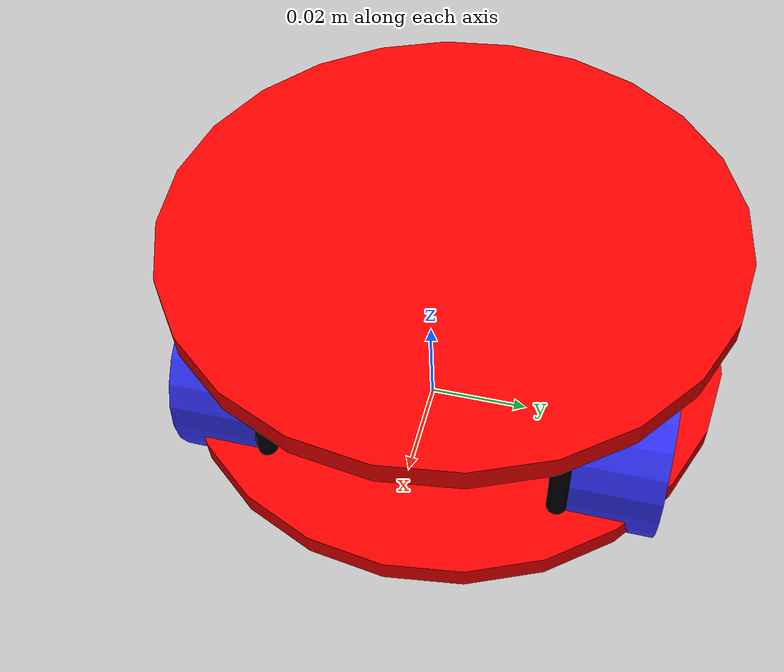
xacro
<?xml version="1.0"?>
<robot xmlns:xacro="http://www.ros.org/wiki/xacro" >

    <xacro:include filename="inertial_macros.xacro"/>

    <xacro:property name="chassis_length" value="0.005"/>
    <xacro:property name="chassis_radius" value="0.06"/>
    <xacro:property name="chassis_mass" value="0.2"/>
    <xacro:property name="wheel_radius" value="0.021"/>
    <xacro:property name="wheel_thickness" value="0.018"/>
    <xacro:property name="wheel_mass" value="0.05"/>
    <xacro:property name="wheel_offset_x" value="0.02"/>
    <xacro:property name="wheel_offset_y" value="0.041"/>
    <xacro:property name="wheel_offset_z" value="0.005"/>
    <xacro:property name="caster_wheel_radius" value="0.007"/>
    <xacro:property name="caster_wheel_mass" value="0.01"/>
    <xacro:property name="caster_wheel_offset_x" value="-0.05"/>
    <xacro:property name="caster_wheel_offset_z" value="${wheel_offset_z - wheel_radius + caster_wheel_radius}"/>

    <material name="white">
        <color rgba="1 1 1 1" />
    </material>

    <material name="orange">
        <color rgba="1 0.3 0.1 1"/>
    </material>

    <material name="blue">
        <color rgba="0.2 0.2 1 1"/>
    </material>

    <material name="black">
        <color rgba="0 0 0 1"/>
    </material>

    <material name="red">
        <color rgba="1 0 0 1"/>
    </material>

    <!-- BASE LINK -->

    <link name="base_link">

    </link>

    <!-- BASE_FOOTPRINT LINK -->

    <joint name="base_footprint_joint" type="fixed">
        <parent link="base_link"/>
        <child link="base_footprint"/>
        <origin xyz="0 0 0" rpy="0 0 0"/>
    </joint>

    <link name="base_footprint">
    </link>

    <!-- CHASSIS LINK -->

    <joint name="chassis_joint" type="fixed">
        <parent link="base_link"/>
        <child link="chassis"/>
        <origin xyz="-0.02 0 ${-wheel_offset_z}"/>
    </joint>

    <link name="chassis">
        <visual>
            <origin xyz="0 0 0"/>
            <geometry>
                <cylinder radius="${chassis_radius}" length="${chassis_length}"/>
            </geometry>
            <material name="red"/>
        </visual>
        <visual>
            <origin xyz="0 0 0.035"/>
            <geometry>
                <cylinder radius="${chassis_radius}" length="${chassis_length}"/>
            </geometry>
            <material name="red"/>
        </visual>
        <visual>
            <origin xyz="-0.04 0.03 0.015"/>
            <geometry>
                <cylinder radius="0.002" length="0.035"/>
            </geometry>
            <material name="black"/>
        </visual>
        <visual>
            <origin xyz="-0.04 -0.03 0.015"/>
            <geometry>
                <cylinder radius="0.002" length="0.035"/>
            </geometry>
            <material name="black"/>
        </visual>
        <visual>
            <origin xyz="0.04 0.03 0.015"/>
            <geometry>
                <cylinder radius="0.002" length="0.035"/>
            </geometry>
            <material name="black"/>
        </visual>
        <visual>
            <origin xyz="0.04 -0.03 0.015"/>
            <geometry>
                <cylinder radius="0.002" length="0.035"/>
            </geometry>
            <material name="black"/>
        </visual>

        <collision>
            <origin xyz="0 0 0"/>
            <geometry>
                <cylinder radius="${chassis_radius}" length="${chassis_length}"/>
            </geometry>
        </collision>
        <collision>
            <origin xyz="0 0 0.035"/>
            <geometry>
                <cylinder radius="${chassis_radius}" length="${chassis_length}"/>
            </geometry>
        </collision>
        <xacro:inertial_cylinder mass="0.5" length="${chassis_length}" radius="${chassis_radius}">
            <origin xyz="0 0 0" rpy="0 0 0"/>
        </xacro:inertial_cylinder>
    </link>

    <gazebo reference="chassis">
        <material>Gazebo/Red</material>
    </gazebo>

    <!-- LEFT WHEEL LINK -->

    <joint name="left_wheel_joint" type="continuous">
        <parent link="base_link"/>
        <child link="left_wheel"/>
        <origin xyz="0 ${wheel_offset_y} 0" rpy="-${pi/2} 0 0" />
        <axis xyz="0 0 1"/>
    </joint>

    <link name="left_wheel">
        <visual>
            <geometry>
                <cylinder radius="${wheel_radius}" length="${wheel_thickness}"/>
            </geometry>
            <material name="blue"/>
        </visual>
        <collision>
            <geometry>
                <sphere radius="${wheel_radius}"/>
            </geometry>
        </collision>
        <xacro:inertial_cylinder mass="${wheel_mass}" length="${wheel_thickness}" radius="${wheel_radius}">
            <origin xyz="0 0 0" rpy="0 0 0"/>
        </xacro:inertial_cylinder>
    </link>

    <gazebo reference="left_wheel">
        <material>Gazebo/Blue</material>
    </gazebo>

    <!-- RIGHT WHEEL LINK -->

    <joint name="right_wheel_joint" type="continuous">
        <parent link="base_link"/>
        <child link="right_wheel"/>
        <origin xyz="0 ${-wheel_offset_y} 0" rpy="${pi/2} 0 0" />
        <axis xyz="0 0 -1"/>
    </joint>

    <link name="right_wheel">
        <visual>
            <geometry>
                <cylinder radius="${wheel_radius}" length="${wheel_thickness}"/>
            </geometry>
            <material name="blue"/>
        </visual>
        <collision>
            <geometry>
                <sphere radius="${wheel_radius}"/>
            </geometry>
        </collision>
        <xacro:inertial_cylinder mass="${wheel_mass}" length="${wheel_thickness}" radius="${wheel_radius}">
            <origin xyz="0 0 0" rpy="0 0 0"/>
        </xacro:inertial_cylinder>
    </link>

    <gazebo reference="right_wheel">
        <material>Gazebo/Blue</material>
    </gazebo>

    <!-- CASTER WHEEL LINK -->

    <joint name="caster_wheel_joint" type="fixed">
        <parent link="chassis"/>
        <child link="caster_wheel"/>
        <origin xyz="${caster_wheel_offset_x} 0 ${caster_wheel_offset_z}"/>
    </joint>

    <link name="caster_wheel">
        <visual>
            <geometry>
                <sphere radius="${caster_wheel_radius}"/>
            </geometry>
            <material name="white"/>
        </visual>
        <visual>
            <origin xyz="0 0 ${caster_wheel_radius/2}"/>
            <geometry>
                <cylinder radius="${caster_wheel_radius*1.2}" length="${caster_wheel_radius}"/>
            </geometry>
            <material name="white"/>
        </visual>

        <collision>
            <geometry>
                <sphere radius="${caster_wheel_radius}"/>
            </geometry>
        </collision>
        <xacro:inertial_sphere mass="${caster_wheel_mass}" radius="${caster_wheel_radius}">
            <origin xyz="0 0 0" rpy="0 0 0"/>
        </xacro:inertial_sphere>
    </link>

    <gazebo reference="caster_wheel">
        <material>Gazebo/White</material>
        <mu1 value="0.001"/>
        <mu2 value="0.001"/>
    </gazebo>

</robot>
